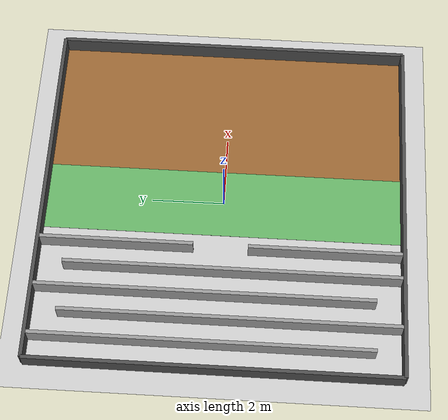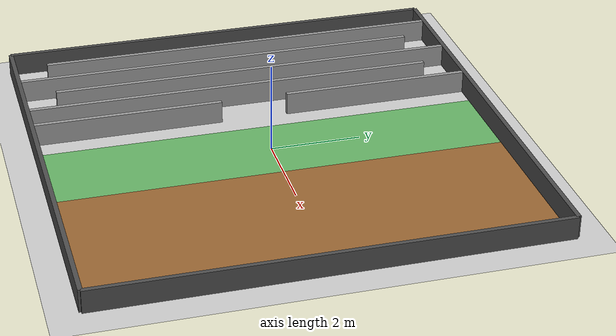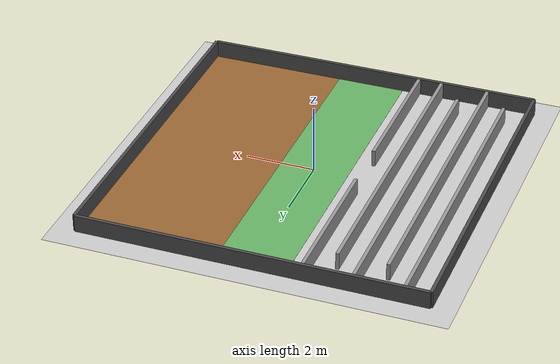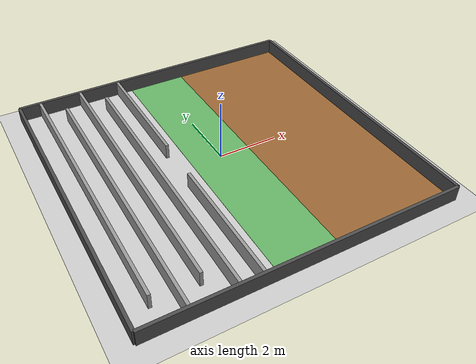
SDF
<?xml version="1.0" ?>
<sdf version="1.8">
  <world name="usar_arena">
    <!-- Essential Ignition Plugins -->
    <plugin filename="libignition-gazebo-physics-system.so" name="ignition::gazebo::systems::Physics"></plugin>
    <plugin filename="libignition-gazebo-user-commands-system.so" name="ignition::gazebo::systems::UserCommands"></plugin>
    <plugin filename="libignition-gazebo-scene-broadcaster-system.so" name="ignition::gazebo::systems::SceneBroadcaster"></plugin>
    <plugin filename="libignition-gazebo-sensors-system.so" name="ignition::gazebo::systems::Sensors">
      <render_engine>ogre2</render_engine>
    </plugin>

    <light type="directional" name="sun">
      <cast_shadows>true</cast_shadows>
      <pose>0 0 10 0 0 0</pose>
      <diffuse>0.9 0.9 0.9 1</diffuse>
      <specular>0.2 0.2 0.2 1</specular>
      <direction>-0.5 0.2 -0.9</direction>
    </light>

    <model name="ground_plane">
      <static>true</static>
      <link name="link">
        <collision name="collision">
          <geometry><plane><normal>0 0 1</normal><size>20 20</size></plane></geometry>
        </collision>
        <visual name="visual">
          <geometry><plane><normal>0 0 1</normal><size>20 20</size></plane></geometry>
          <material>
            <ambient>0.8 0.8 0.8 1</ambient>
            <diffuse>0.8 0.8 0.8 1</diffuse>
            <pbr><metal><albedo_color>0.8 0.8 0.8 1</albedo_color></metal></pbr>
          </material>
        </visual>
      </link>
    </model>

    <!-- PERIMETER WALLS (10x10 meters)             -->
    <!-- Height: 0.5m (allows top-down viewing)     -->
    <model name="perimeter">
      <static>true</static>
      <!-- North Wall -->
      <link name="wall_n"><pose>0 5 0.25 0 0 0</pose>
        <collision name="c"><geometry><box><size>10 0.1 0.5</size></box></geometry></collision>
        <visual name="v"><geometry><box><size>10 0.1 0.5</size></box></geometry><material><ambient>0.3 0.3 0.3 1</ambient><diffuse>0.3 0.3 0.3 1</diffuse><pbr><metal><albedo_color>0.3 0.3 0.3 1</albedo_color></metal></pbr></material></visual>
      </link>
      <!-- South Wall -->
      <link name="wall_s"><pose>0 -5 0.25 0 0 0</pose>
        <collision name="c"><geometry><box><size>10 0.1 0.5</size></box></geometry></collision>
        <visual name="v"><geometry><box><size>10 0.1 0.5</size></box></geometry><material><ambient>0.3 0.3 0.3 1</ambient><diffuse>0.3 0.3 0.3 1</diffuse><pbr><metal><albedo_color>0.3 0.3 0.3 1</albedo_color></metal></pbr></material></visual>
      </link>
      <!-- East Wall -->
      <link name="wall_e"><pose>5 0 0.25 0 0 0</pose>
        <collision name="c"><geometry><box><size>0.1 10 0.5</size></box></geometry></collision>
        <visual name="v"><geometry><box><size>0.1 10 0.5</size></box></geometry><material><ambient>0.3 0.3 0.3 1</ambient><diffuse>0.3 0.3 0.3 1</diffuse><pbr><metal><albedo_color>0.3 0.3 0.3 1</albedo_color></metal></pbr></material></visual>
      </link>
      <!-- West Wall -->
      <link name="wall_w"><pose>-5 0 0.25 0 0 0</pose>
        <collision name="c"><geometry><box><size>0.1 10 0.5</size></box></geometry></collision>
        <visual name="v"><geometry><box><size>0.1 10 0.5</size></box></geometry><material><ambient>0.3 0.3 0.3 1</ambient><diffuse>0.3 0.3 0.3 1</diffuse><pbr><metal><albedo_color>0.3 0.3 0.3 1</albedo_color></metal></pbr></material></visual>
      </link>
    </model>

    <!-- ZONES (Ground overlays for visual cues)    -->
    <!-- PBR materials added so colors render       -->
    <model name="floor_zones">
      <static>true</static>
      <!-- Safe Zone (Center, 2x10m area, Green) -->
      <link name="safe_zone"><pose>0 0 0.001 0 0 0</pose>
        <visual name="v"><geometry><box><size>2 10 0.002</size></box></geometry>
          <material>
            <ambient>0.4 0.7 0.4 1</ambient><diffuse>0.4 0.7 0.4 1</diffuse>
            <pbr><metal><albedo_color>0.4 0.7 0.4 1</albedo_color></metal></pbr>
          </material>
        </visual>
      </link>

      <!-- Gravel Field (East, 4x10m area, Brown) -->
      <link name="gravel_zone"><pose>3 0 0.001 0 0 0</pose>
        <collision name="c"><geometry><box><size>4 10 0.002</size></box></geometry>
          <surface><friction><ode><mu>1.0</mu><mu2>1.0</mu2></ode></friction></surface>
        </collision>
        <visual name="v"><geometry><box><size>4 10 0.002</size></box></geometry>
          <material>
            <ambient>0.6 0.4 0.2 1</ambient><diffuse>0.6 0.4 0.2 1</diffuse>
            <pbr><metal><albedo_color>0.6 0.4 0.2 1</albedo_color></metal></pbr>
          </material>
        </visual>
      </link>
    </model>

    <!-- COLLAPSED BUILDING MAZE (West)             -->
    <!-- 0.6m clear corridors (Nav2 inflation safe) -->
    <model name="building_maze">
      <static>true</static>

      <!-- Baffle 1 (X=-1.5) Entrance. 1.5m gap in the exact center -->
      <link name="baf1_top"><pose>-1.5 2.85 0.25 0 0 0</pose>
        <collision name="c"><geometry><box><size>0.1 4.2 0.5</size></box></geometry></collision>
        <visual name="v"><geometry><box><size>0.1 4.2 0.5</size></box></geometry>
          <material><ambient>0.6 0.6 0.6 1</ambient><diffuse>0.6 0.6 0.6 1</diffuse><pbr><metal><albedo_color>0.6 0.6 0.6 1</albedo_color></metal></pbr></material>
        </visual>
      </link>
      <link name="baf1_bot"><pose>-1.5 -2.85 0.25 0 0 0</pose>
        <collision name="c"><geometry><box><size>0.1 4.2 0.5</size></box></geometry></collision>
        <visual name="v"><geometry><box><size>0.1 4.2 0.5</size></box></geometry>
          <material><ambient>0.6 0.6 0.6 1</ambient><diffuse>0.6 0.6 0.6 1</diffuse><pbr><metal><albedo_color>0.6 0.6 0.6 1</albedo_color></metal></pbr></material>
        </visual>
      </link>

      <!-- Baffle 2 (X=-2.2) Gap at North (Y=4.6) -->
      <link name="baf2"><pose>-2.2 -0.35 0.25 0 0 0</pose>
        <collision name="c"><geometry><box><size>0.1 9.2 0.5</size></box></geometry></collision>
        <visual name="v"><geometry><box><size>0.1 9.2 0.5</size></box></geometry><material><ambient>0.6 0.6 0.6 1</ambient><diffuse>0.6 0.6 0.6 1</diffuse><pbr><metal><albedo_color>0.6 0.6 0.6 1</albedo_color></metal></pbr></material></visual>
      </link>

      <!-- Baffle 3 (X=-2.9) Gap at South (Y=-4.6) -->
      <link name="baf3"><pose>-2.9 0.35 0.25 0 0 0</pose>
        <collision name="c"><geometry><box><size>0.1 9.2 0.5</size></box></geometry></collision>
        <visual name="v"><geometry><box><size>0.1 9.2 0.5</size></box></geometry><material><ambient>0.6 0.6 0.6 1</ambient><diffuse>0.6 0.6 0.6 1</diffuse><pbr><metal><albedo_color>0.6 0.6 0.6 1</albedo_color></metal></pbr></material></visual>
      </link>

      <!-- Baffle 4 (X=-3.6) Gap at North (Y=4.6) -->
      <link name="baf4"><pose>-3.6 -0.35 0.25 0 0 0</pose>
        <collision name="c"><geometry><box><size>0.1 9.2 0.5</size></box></geometry></collision>
        <visual name="v"><geometry><box><size>0.1 9.2 0.5</size></box></geometry><material><ambient>0.6 0.6 0.6 1</ambient><diffuse>0.6 0.6 0.6 1</diffuse><pbr><metal><albedo_color>0.6 0.6 0.6 1</albedo_color></metal></pbr></material></visual>
      </link>

      <!-- Baffle 5 (X=-4.3) Gap at South (Y=-4.6) -->
      <!-- This leaves 0.6m clear space between it and the West wall (at -5) -->
      <link name="baf5"><pose>-4.3 0.35 0.25 0 0 0</pose>
        <collision name="c"><geometry><box><size>0.1 9.2 0.5</size></box></geometry></collision>
        <visual name="v"><geometry><box><size>0.1 9.2 0.5</size></box></geometry><material><ambient>0.6 0.6 0.6 1</ambient><diffuse>0.6 0.6 0.6 1</diffuse><pbr><metal><albedo_color>0.6 0.6 0.6 1</albedo_color></metal></pbr></material></visual>
      </link>

    </model>
  </world>
</sdf>
